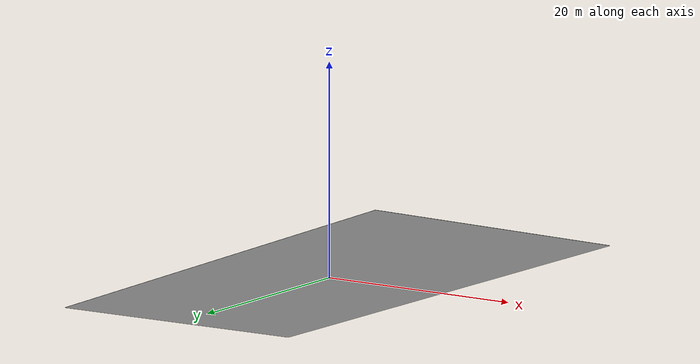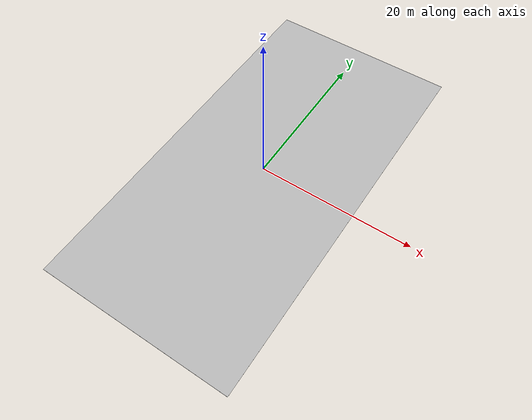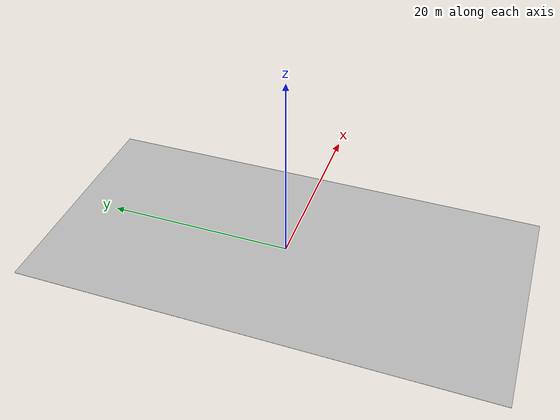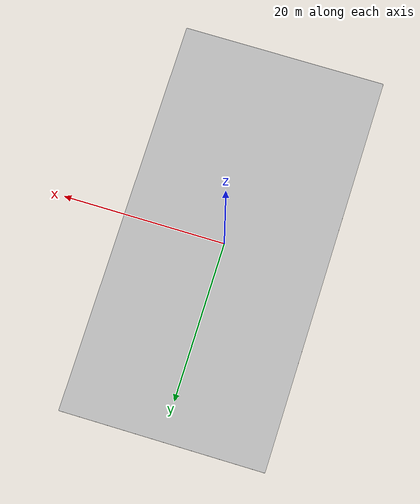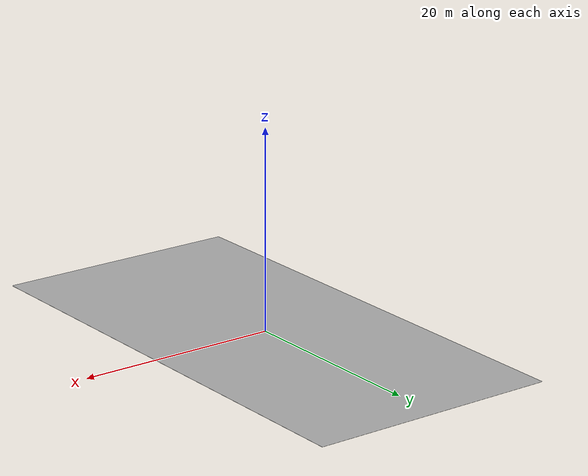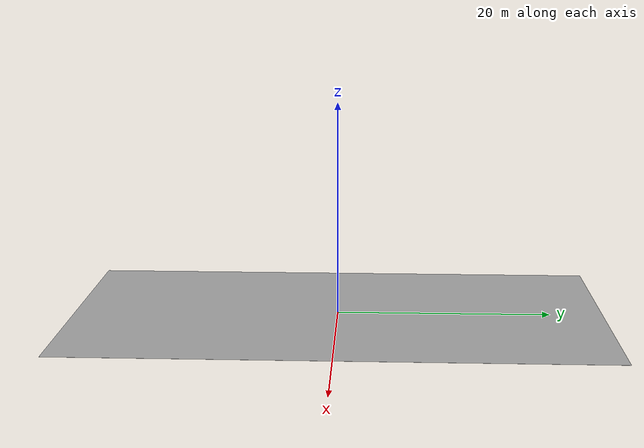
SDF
<?xml version='1.0'?>
<sdf version='1.6'>
  <model name='ground_25x50'>
    <link name='main'>
      <pose frame=''>0 0 0.01 0 0 0</pose>
      <collision name='main_Collision'>
        <geometry>
          <box>
            <size>25 50 0.01 </size>
          </box>
        </geometry>
      </collision>
      <visual name='main_Visual'>
        <geometry>
          <box>
            <size>25 50 0.01</size>
          </box>
        </geometry>
        <material>
          <script>
            <uri>model://ground_25x50/materials/scripts</uri>
            <uri>model://ground_25x50/materials/textures</uri>
            <name>ground_25x50</name>
          </script>
        </material>
      </visual>
    </link>
    <static>1</static>
  </model>
</sdf>
